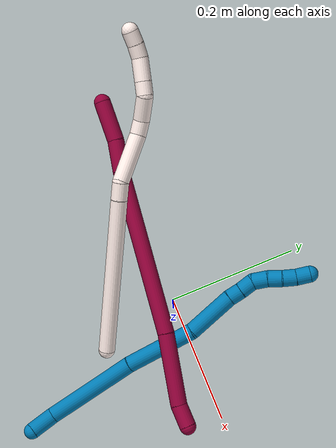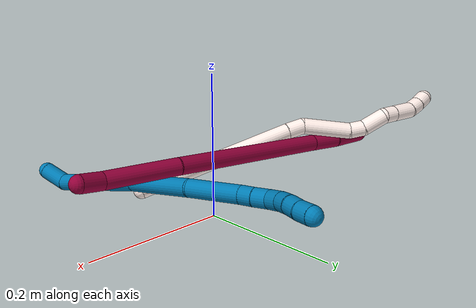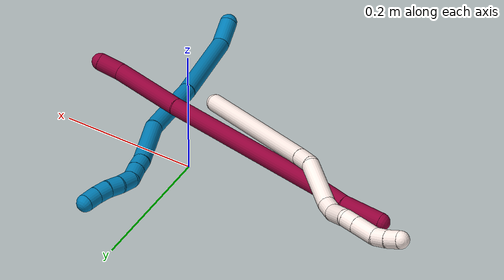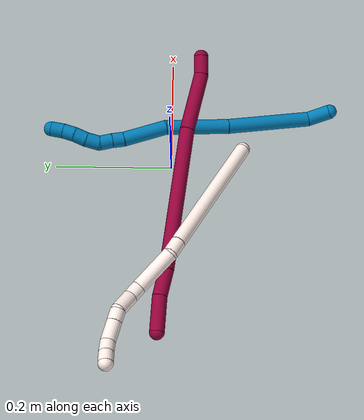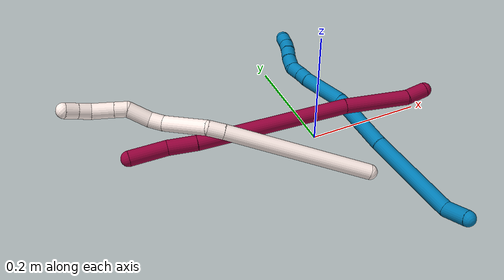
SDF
<sdf version="1.7">
 <world name="default">
  <model name="photoneo_s_sensor">
   <static>1</static>
   <pose>0 0 2 1.57079 1.57079 3.14159</pose>
   <link name="link">
    <inertial><mass>0.1</mass></inertial>
    <sensor name="sensor" type="depth">
     <update_rate>30</update_rate>
     <camera>
      <horizontal_fov>1.22</horizontal_fov>
      <image><width>1920</width><height>1200</height><format>B8G8R8</format></image>
      <clip><near>0.1</near><far>4</far></clip>
      <depth_camera><output>points</output></depth_camera>
     </camera>
     <plugin name="camera_plugin" filename="libgazebo_ros_depth_camera.so">
      <baseline>0.2</baseline>
      <alwaysOn>1</alwaysOn>
      <updateRate>0.0</updateRate>
      <cameraName>camera_ir</cameraName>
      <imageTopicName>/camera/color/image_raw</imageTopicName>
      <cameraInfoTopicName>/camera/color/camera_info</cameraInfoTopicName>
      <depthImageTopicName>/camera/depth/image_raw</depthImageTopicName>
      <depthImageCameraInfoTopicName>/camera/depth/camera_info</depthImageCameraInfoTopicName>
      <pointCloudTopicName>/camera/depth/points</pointCloudTopicName>
      <frameName>fr_optical</frameName>
      <pointCloudCutoff>0.1</pointCloudCutoff>
      <pointCloudCutoffMax>2.0</pointCloudCutoffMax>
      <distortionK1>0</distortionK1>
      <distortionK2>0</distortionK2>
      <distortionK3>0</distortionK3>
      <distortionT1>0</distortionT1>
      <distortionT2>0</distortionT2>
      <CxPrime>0</CxPrime>
      <Cx>0</Cx>
      <Cy>0</Cy>
      <focalLength>0</focalLength>
      <hackBaseline>0</hackBaseline>
     </plugin>
    </sensor>
   </link>
  </model>
  <model name="bin">
   <static>1</static>
   <link name="bottom">
    <collision name="collision-bottom">
     <pose>0 0 -0.01 0 -0 0</pose>
     <geometry><box><size>0.8 0.6 0.02</size></box></geometry>
     <surface>
      <friction><ode><mu>100</mu><mu2>100</mu2></ode></friction>
      <contact><collide_bitmask>65535</collide_bitmask></contact>
     </surface>
    </collision>
   </link>
   <link name="west_wall">
    <collision name="collision-west_wall">
     <pose>-0.41 0 0.1 0 -0 0</pose>
     <geometry><box><size>0.02 0.6 0.2</size></box></geometry>
     <surface>
      <friction><ode><mu>100</mu><mu2>100</mu2></ode></friction>
      <contact><collide_bitmask>65535</collide_bitmask></contact>
     </surface>
    </collision>
   </link>
   <link name="east_wall">
    <collision name="collision-east_wall">
     <pose>0.41 0 0.1 0 -0 0</pose>
     <geometry><box><size>0.02 0.6 0.2</size></box></geometry>
     <surface>
      <friction><ode><mu>100</mu><mu2>100</mu2></ode></friction>
      <contact><collide_bitmask>65535</collide_bitmask></contact>
     </surface>
    </collision>
   </link>
   <link name="south_wall">
    <collision name="collision-south_wall">
     <pose>0 -0.31 0.1 0 -0 0</pose>
     <geometry><box><size>0.8 0.02 0.2</size></box></geometry>
     <surface>
      <friction><ode><mu>100</mu><mu2>100</mu2></ode></friction>
      <contact><collide_bitmask>65535</collide_bitmask></contact>
     </surface>
    </collision>
   </link>
   <link name="north_wall">
    <collision name="collision-north_wall">
     <pose>0 0.31 0.1 0 -0 0</pose>
     <geometry><box><size>0.8 0.02 0.2</size></box></geometry>
     <surface>
      <friction><ode><mu>100</mu><mu2>100</mu2></ode></friction>
      <contact><collide_bitmask>65535</collide_bitmask></contact>
     </surface>
    </collision>
   </link>
  </model>
  <model name="8">
   <static>0</static>
   <link name="8">
    <collision name="collision-cylinder-e_1_1_4">
     <pose>-0.00067 -0.000463 -0.016923 3.11426 -0.039529 -1.93159</pose>
     <geometry><cylinder><radius>0.0125</radius><length>0.033885</length></cylinder></geometry>
     <surface>
      <friction><ode><mu>1.16</mu><mu2>1.16</mu2><slip1>0</slip1><slip2>0</slip2></ode></friction>
      <contact><ode><kp>1e+06</kp><kd>1</kd><max_vel>0</max_vel><min_depth>0.001</min_depth></ode></contact>
     </surface>
    </collision>
    <visual name="visual-cylinder-e_1_1_4">
     <pose>-0.00067 -0.000463 -0.016923 3.11426 -0.039529 -1.93159</pose>
     <geometry><cylinder><radius>0.0125</radius><length>0.033885</length></cylinder></geometry>
     <material><ambient>0.584314 0 0.227451 1</ambient></material>
    </visual>
    <collision name="collision-cylinder-e_2_4_5">
     <pose>-0.017128 0.000103 -0.085583 -3.12171 -0.296142 3.00848</pose>
     <geometry><cylinder><radius>0.0125</radius><length>0.108205</length></cylinder></geometry>
     <surface>
      <friction><ode><mu>1.16</mu><mu2>1.16</mu2><slip1>0</slip1><slip2>0</slip2></ode></friction>
      <contact><ode><kp>1e+06</kp><kd>1</kd><max_vel>0</max_vel><min_depth>0.001</min_depth></ode></contact>
     </surface>
    </collision>
    <visual name="visual-cylinder-e_2_4_5">
     <pose>-0.017128 0.000103 -0.085583 -3.12171 -0.296142 3.00848</pose>
     <geometry><cylinder><radius>0.0125</radius><length>0.108205</length></cylinder></geometry>
     <material><ambient>0.584314 0 0.227451 1</ambient></material>
    </visual>
    <collision name="collision-cylinder-e_3_5_6">
     <pose>-0.05724 0.00033 -0.260016 3.13505 -0.1957 -3.07497</pose>
     <geometry><cylinder><radius>0.0125</radius><length>0.250173</length></cylinder></geometry>
     <surface>
      <friction><ode><mu>1.16</mu><mu2>1.16</mu2><slip1>0</slip1><slip2>0</slip2></ode></friction>
      <contact><ode><kp>1e+06</kp><kd>1</kd><max_vel>0</max_vel><min_depth>0.001</min_depth></ode></contact>
     </surface>
    </collision>
    <visual name="visual-cylinder-e_3_5_6">
     <pose>-0.05724 0.00033 -0.260016 3.13505 -0.1957 -3.07497</pose>
     <geometry><cylinder><radius>0.0125</radius><length>0.250173</length></cylinder></geometry>
     <material><ambient>0.584314 0 0.227451 1</ambient></material>
    </visual>
    <collision name="collision-cylinder-e_4_6_7">
     <pose>-0.088101 0.000463 -0.405275 -3.10012 -0.281786 2.85118</pose>
     <geometry><cylinder><radius>0.0125</radius><length>0.047018</length></cylinder></geometry>
     <surface>
      <friction><ode><mu>1.16</mu><mu2>1.16</mu2><slip1>0</slip1><slip2>0</slip2></ode></friction>
      <contact><ode><kp>1e+06</kp><kd>1</kd><max_vel>0</max_vel><min_depth>0.001</min_depth></ode></contact>
     </surface>
    </collision>
    <visual name="visual-cylinder-e_4_6_7">
     <pose>-0.088101 0.000463 -0.405275 -3.10012 -0.281786 2.85118</pose>
     <geometry><cylinder><radius>0.0125</radius><length>0.047018</length></cylinder></geometry>
     <material><ambient>0.584314 0 0.227451 1</ambient></material>
    </visual>
    <collision name="collision-cylinder-e_5_7_2">
     <pose>-0.099421 -0.00063 -0.457749 3.07383 -0.158212 -2.33354</pose>
     <geometry><cylinder><radius>0.0125</radius><length>0.060719</length></cylinder></geometry>
     <surface>
      <friction><ode><mu>1.16</mu><mu2>1.16</mu2><slip1>0</slip1><slip2>0</slip2></ode></friction>
      <contact><ode><kp>1e+06</kp><kd>1</kd><max_vel>0</max_vel><min_depth>0.001</min_depth></ode></contact>
     </surface>
    </collision>
    <visual name="visual-cylinder-e_5_7_2">
     <pose>-0.099421 -0.00063 -0.457749 3.07383 -0.158212 -2.33354</pose>
     <geometry><cylinder><radius>0.0125</radius><length>0.060719</length></cylinder></geometry>
     <material><ambient>0.584314 0 0.227451 1</ambient></material>
    </visual>
    <collision name="collision-sphere-2">
     <pose>-0.104205 -0.00266 -0.48766 0 -0 0</pose>
     <geometry><sphere><radius>0.0125</radius></sphere></geometry>
     <surface>
      <friction><ode><mu>1.16</mu><mu2>1.16</mu2><slip1>0</slip1><slip2>0</slip2></ode></friction>
      <contact><ode><kp>1e+06</kp><kd>1</kd><max_vel>0</max_vel><min_depth>0.001</min_depth></ode></contact>
     </surface>
    </collision>
    <visual name="visual-sphere-2">
     <pose>-0.104205 -0.00266 -0.48766 0 -0 0</pose>
     <geometry><sphere><radius>0.0125</radius></sphere></geometry>
     <material><ambient>0.584314 0 0.227451 1</ambient></material>
    </visual>
    <collision name="collision-sphere-7">
     <pose>-0.094638 0.001399 -0.427837 0 -0 0</pose>
     <geometry><sphere><radius>0.0125</radius></sphere></geometry>
     <surface>
      <friction><ode><mu>1.16</mu><mu2>1.16</mu2><slip1>0</slip1><slip2>0</slip2></ode></friction>
      <contact><ode><kp>1e+06</kp><kd>1</kd><max_vel>0</max_vel><min_depth>0.001</min_depth></ode></contact>
     </surface>
    </collision>
    <visual name="visual-sphere-7">
     <pose>-0.094638 0.001399 -0.427837 0 -0 0</pose>
     <geometry><sphere><radius>0.0125</radius></sphere></geometry>
     <material><ambient>0.584314 0 0.227451 1</ambient></material>
    </visual>
    <collision name="collision-sphere-6">
     <pose>-0.081564 -0.000473 -0.382713 0 -0 0</pose>
     <geometry><sphere><radius>0.0125</radius></sphere></geometry>
     <surface>
      <friction><ode><mu>1.16</mu><mu2>1.16</mu2><slip1>0</slip1><slip2>0</slip2></ode></friction>
      <contact><ode><kp>1e+06</kp><kd>1</kd><max_vel>0</max_vel><min_depth>0.001</min_depth></ode></contact>
     </surface>
    </collision>
    <visual name="visual-sphere-6">
     <pose>-0.081564 -0.000473 -0.382713 0 -0 0</pose>
     <geometry><sphere><radius>0.0125</radius></sphere></geometry>
     <material><ambient>0.584314 0 0.227451 1</ambient></material>
    </visual>
    <collision name="collision-sphere-5">
     <pose>-0.032917 0.001132 -0.13732 0 -0 0</pose>
     <geometry><sphere><radius>0.0125</radius></sphere></geometry>
     <surface>
      <friction><ode><mu>1.16</mu><mu2>1.16</mu2><slip1>0</slip1><slip2>0</slip2></ode></friction>
      <contact><ode><kp>1e+06</kp><kd>1</kd><max_vel>0</max_vel><min_depth>0.001</min_depth></ode></contact>
     </surface>
    </collision>
    <visual name="visual-sphere-5">
     <pose>-0.032917 0.001132 -0.13732 0 -0 0</pose>
     <geometry><sphere><radius>0.0125</radius></sphere></geometry>
     <material><ambient>0.584314 0 0.227451 1</ambient></material>
    </visual>
    <collision name="collision-sphere-1">
     <geometry><sphere><radius>0.0125</radius></sphere></geometry>
     <surface>
      <friction><ode><mu>1.16</mu><mu2>1.16</mu2><slip1>0</slip1><slip2>0</slip2></ode></friction>
      <contact><ode><kp>1e+06</kp><kd>1</kd><max_vel>0</max_vel><min_depth>0.001</min_depth></ode></contact>
     </surface>
    </collision>
    <visual name="visual-sphere-1">
     <geometry><sphere><radius>0.0125</radius></sphere></geometry>
     <material><ambient>0.584314 0 0.227451 1</ambient></material>
    </visual>
    <collision name="collision-sphere-4">
     <pose>-0.001339 -0.000925 -0.033845 0 -0 0</pose>
     <geometry><sphere><radius>0.0125</radius></sphere></geometry>
     <surface>
      <friction><ode><mu>1.16</mu><mu2>1.16</mu2><slip1>0</slip1><slip2>0</slip2></ode></friction>
      <contact><ode><kp>1e+06</kp><kd>1</kd><max_vel>0</max_vel><min_depth>0.001</min_depth></ode></contact>
     </surface>
    </collision>
    <visual name="visual-sphere-4">
     <pose>-0.001339 -0.000925 -0.033845 0 -0 0</pose>
     <geometry><sphere><radius>0.0125</radius></sphere></geometry>
     <material><ambient>0.584314 0 0.227451 1</ambient></material>
    </visual>
    <inertial>
     <pose>-0.05275 0.000123 -0.243465 0 -0 0</pose>
     <mass>0.5</mass>
     <inertia>
      <ixx>-0.001513</ixx>
      <ixy>0</ixy>
      <ixz>0</ixz>
      <iyy>0.001358</iyy>
      <iyz>0</iyz>
      <izz>0.000263</izz>
     </inertia>
    </inertial>
   </link>
   <pose>0.177 -0.049414 0.080172 -1.33825 0.681969 -1.39751</pose>
  </model>
  <model name="9">
   <static>0</static>
   <link name="9">
    <collision name="collision-cylinder-e_1_1_4">
     <pose>-0.005382 0.000952 -0.019066 -3.09169 -0.274787 2.78446</pose>
     <geometry><cylinder><radius>0.0125</radius><length>0.039667</length></cylinder></geometry>
     <surface>
      <friction><ode><mu>1.16</mu><mu2>1.16</mu2><slip1>0</slip1><slip2>0</slip2></ode></friction>
      <contact><ode><kp>1e+06</kp><kd>1</kd><max_vel>0</max_vel><min_depth>0.001</min_depth></ode></contact>
     </surface>
    </collision>
    <visual name="visual-cylinder-e_1_1_4">
     <pose>-0.005382 0.000952 -0.019066 -3.09169 -0.274787 2.78446</pose>
     <geometry><cylinder><radius>0.0125</radius><length>0.039667</length></cylinder></geometry>
     <material><ambient>0 0.490196 0.709804 1</ambient></material>
    </visual>
    <collision name="collision-cylinder-e_2_4_5">
     <pose>-0.006853 0.032554 -0.105168 -2.71276 0.052994 -0.24222</pose>
     <geometry><cylinder><radius>0.0125</radius><length>0.14763</length></cylinder></geometry>
     <surface>
      <friction><ode><mu>1.16</mu><mu2>1.16</mu2><slip1>0</slip1><slip2>0</slip2></ode></friction>
      <contact><ode><kp>1e+06</kp><kd>1</kd><max_vel>0</max_vel><min_depth>0.001</min_depth></ode></contact>
     </surface>
    </collision>
    <visual name="visual-cylinder-e_2_4_5">
     <pose>-0.006853 0.032554 -0.105168 -2.71276 0.052994 -0.24222</pose>
     <geometry><cylinder><radius>0.0125</radius><length>0.14763</length></cylinder></geometry>
     <material><ambient>0 0.490196 0.709804 1</ambient></material>
    </visual>
    <collision name="collision-cylinder-e_3_5_6">
     <pose>0.002993 0.081262 -0.223149 -2.80096 0.109391 -0.616398</pose>
     <geometry><cylinder><radius>0.0125</radius><length>0.108749</length></cylinder></geometry>
     <surface>
      <friction><ode><mu>1.16</mu><mu2>1.16</mu2><slip1>0</slip1><slip2>0</slip2></ode></friction>
      <contact><ode><kp>1e+06</kp><kd>1</kd><max_vel>0</max_vel><min_depth>0.001</min_depth></ode></contact>
     </surface>
    </collision>
    <visual name="visual-cylinder-e_3_5_6">
     <pose>0.002993 0.081262 -0.223149 -2.80096 0.109391 -0.616398</pose>
     <geometry><cylinder><radius>0.0125</radius><length>0.108749</length></cylinder></geometry>
     <material><ambient>0 0.490196 0.709804 1</ambient></material>
    </visual>
    <collision name="collision-cylinder-e_4_6_7">
     <pose>0.003615 0.113782 -0.308667 -2.74539 -0.140867 0.675959</pose>
     <geometry><cylinder><radius>0.0125</radius><length>0.075704</length></cylinder></geometry>
     <surface>
      <friction><ode><mu>1.16</mu><mu2>1.16</mu2><slip1>0</slip1><slip2>0</slip2></ode></friction>
      <contact><ode><kp>1e+06</kp><kd>1</kd><max_vel>0</max_vel><min_depth>0.001</min_depth></ode></contact>
     </surface>
    </collision>
    <visual name="visual-cylinder-e_4_6_7">
     <pose>0.003615 0.113782 -0.308667 -2.74539 -0.140867 0.675959</pose>
     <geometry><cylinder><radius>0.0125</radius><length>0.075704</length></cylinder></geometry>
     <material><ambient>0 0.490196 0.709804 1</ambient></material>
    </visual>
    <collision name="collision-cylinder-e_5_7_8">
     <pose>-0.001703 0.131272 -0.352774 -2.83418 -0.000289 0.001865</pose>
     <geometry><cylinder><radius>0.0125</radius><length>0.020004</length></cylinder></geometry>
     <surface>
      <friction><ode><mu>1.16</mu><mu2>1.16</mu2><slip1>0</slip1><slip2>0</slip2></ode></friction>
      <contact><ode><kp>1e+06</kp><kd>1</kd><max_vel>0</max_vel><min_depth>0.001</min_depth></ode></contact>
     </surface>
    </collision>
    <visual name="visual-cylinder-e_5_7_8">
     <pose>-0.001703 0.131272 -0.352774 -2.83418 -0.000289 0.001865</pose>
     <geometry><cylinder><radius>0.0125</radius><length>0.020004</length></cylinder></geometry>
     <material><ambient>0 0.490196 0.709804 1</ambient></material>
    </visual>
    <collision name="collision-cylinder-e_6_8_9">
     <pose>-0.002515 0.13822 -0.372655 -2.77933 -0.072983 0.393525</pose>
     <geometry><cylinder><radius>0.0125</radius><length>0.02219</length></cylinder></geometry>
     <surface>
      <friction><ode><mu>1.16</mu><mu2>1.16</mu2><slip1>0</slip1><slip2>0</slip2></ode></friction>
      <contact><ode><kp>1e+06</kp><kd>1</kd><max_vel>0</max_vel><min_depth>0.001</min_depth></ode></contact>
     </surface>
    </collision>
    <visual name="visual-cylinder-e_6_8_9">
     <pose>-0.002515 0.13822 -0.372655 -2.77933 -0.072983 0.393525</pose>
     <geometry><cylinder><radius>0.0125</radius><length>0.02219</length></cylinder></geometry>
     <material><ambient>0 0.490196 0.709804 1</ambient></material>
    </visual>
    <collision name="collision-cylinder-e_7_9_10">
     <pose>0.000966 0.14422 -0.393725 -2.9501 0.374264 -2.20278</pose>
     <geometry><cylinder><radius>0.0125</radius><length>0.023469</length></cylinder></geometry>
     <surface>
      <friction><ode><mu>1.16</mu><mu2>1.16</mu2><slip1>0</slip1><slip2>0</slip2></ode></friction>
      <contact><ode><kp>1e+06</kp><kd>1</kd><max_vel>0</max_vel><min_depth>0.001</min_depth></ode></contact>
     </surface>
    </collision>
    <visual name="visual-cylinder-e_7_9_10">
     <pose>0.000966 0.14422 -0.393725 -2.9501 0.374264 -2.20278</pose>
     <geometry><cylinder><radius>0.0125</radius><length>0.023469</length></cylinder></geometry>
     <material><ambient>0 0.490196 0.709804 1</ambient></material>
    </visual>
    <collision name="collision-cylinder-e_8_10_11">
     <pose>0.010112 0.146587 -0.41369 -3.11038 0.483474 -3.01517</pose>
     <geometry><cylinder><radius>0.0125</radius><length>0.02089</length></cylinder></geometry>
     <surface>
      <friction><ode><mu>1.16</mu><mu2>1.16</mu2><slip1>0</slip1><slip2>0</slip2></ode></friction>
      <contact><ode><kp>1e+06</kp><kd>1</kd><max_vel>0</max_vel><min_depth>0.001</min_depth></ode></contact>
     </surface>
    </collision>
    <visual name="visual-cylinder-e_8_10_11">
     <pose>0.010112 0.146587 -0.41369 -3.11038 0.483474 -3.01517</pose>
     <geometry><cylinder><radius>0.0125</radius><length>0.02089</length></cylinder></geometry>
     <material><ambient>0 0.490196 0.709804 1</ambient></material>
    </visual>
    <collision name="collision-cylinder-e_9_11_12">
     <pose>0.018406 0.146587 -0.432573 3.11165 0.342542 2.96891</pose>
     <geometry><cylinder><radius>0.0125</radius><length>0.020477</length></cylinder></geometry>
     <surface>
      <friction><ode><mu>1.16</mu><mu2>1.16</mu2><slip1>0</slip1><slip2>0</slip2></ode></friction>
      <contact><ode><kp>1e+06</kp><kd>1</kd><max_vel>0</max_vel><min_depth>0.001</min_depth></ode></contact>
     </surface>
    </collision>
    <visual name="visual-cylinder-e_9_11_12">
     <pose>0.018406 0.146587 -0.432573 3.11165 0.342542 2.96891</pose>
     <geometry><cylinder><radius>0.0125</radius><length>0.020477</length></cylinder></geometry>
     <material><ambient>0 0.490196 0.709804 1</ambient></material>
    </visual>
    <collision name="collision-cylinder-e_10_12_2">
     <pose>0.024462 0.147084 -0.452464 -3.06516 0.249304 -2.54924</pose>
     <geometry><cylinder><radius>0.0125</radius><length>0.02122</length></cylinder></geometry>
     <surface>
      <friction><ode><mu>1.16</mu><mu2>1.16</mu2><slip1>0</slip1><slip2>0</slip2></ode></friction>
      <contact><ode><kp>1e+06</kp><kd>1</kd><max_vel>0</max_vel><min_depth>0.001</min_depth></ode></contact>
     </surface>
    </collision>
    <visual name="visual-cylinder-e_10_12_2">
     <pose>0.024462 0.147084 -0.452464 -3.06516 0.249304 -2.54924</pose>
     <geometry><cylinder><radius>0.0125</radius><length>0.02122</length></cylinder></geometry>
     <material><ambient>0 0.490196 0.709804 1</ambient></material>
    </visual>
    <collision name="collision-sphere-2">
     <pose>0.02708 0.147869 -0.462716 0 -0 0</pose>
     <geometry><sphere><radius>0.0125</radius></sphere></geometry>
     <surface>
      <friction><ode><mu>1.16</mu><mu2>1.16</mu2><slip1>0</slip1><slip2>0</slip2></ode></friction>
      <contact><ode><kp>1e+06</kp><kd>1</kd><max_vel>0</max_vel><min_depth>0.001</min_depth></ode></contact>
     </surface>
    </collision>
    <visual name="visual-sphere-2">
     <pose>0.02708 0.147869 -0.462716 0 -0 0</pose>
     <geometry><sphere><radius>0.0125</radius></sphere></geometry>
     <material><ambient>0 0.490196 0.709804 1</ambient></material>
    </visual>
    <collision name="collision-sphere-12">
     <pose>0.021845 0.146299 -0.442212 0 -0 0</pose>
     <geometry><sphere><radius>0.0125</radius></sphere></geometry>
     <surface>
      <friction><ode><mu>1.16</mu><mu2>1.16</mu2><slip1>0</slip1><slip2>0</slip2></ode></friction>
      <contact><ode><kp>1e+06</kp><kd>1</kd><max_vel>0</max_vel><min_depth>0.001</min_depth></ode></contact>
     </surface>
    </collision>
    <visual name="visual-sphere-12">
     <pose>0.021845 0.146299 -0.442212 0 -0 0</pose>
     <geometry><sphere><radius>0.0125</radius></sphere></geometry>
     <material><ambient>0 0.490196 0.709804 1</ambient></material>
    </visual>
    <collision name="collision-sphere-11">
     <pose>0.014967 0.146876 -0.422934 0 -0 0</pose>
     <geometry><sphere><radius>0.0125</radius></sphere></geometry>
     <surface>
      <friction><ode><mu>1.16</mu><mu2>1.16</mu2><slip1>0</slip1><slip2>0</slip2></ode></friction>
      <contact><ode><kp>1e+06</kp><kd>1</kd><max_vel>0</max_vel><min_depth>0.001</min_depth></ode></contact>
     </surface>
    </collision>
    <visual name="visual-sphere-11">
     <pose>0.014967 0.146876 -0.422934 0 -0 0</pose>
     <geometry><sphere><radius>0.0125</radius></sphere></geometry>
     <material><ambient>0 0.490196 0.709804 1</ambient></material>
    </visual>
    <collision name="collision-sphere-10">
     <pose>0.005256 0.146299 -0.404447 0 -0 0</pose>
     <geometry><sphere><radius>0.0125</radius></sphere></geometry>
     <surface>
      <friction><ode><mu>1.16</mu><mu2>1.16</mu2><slip1>0</slip1><slip2>0</slip2></ode></friction>
      <contact><ode><kp>1e+06</kp><kd>1</kd><max_vel>0</max_vel><min_depth>0.001</min_depth></ode></contact>
     </surface>
    </collision>
    <visual name="visual-sphere-10">
     <pose>0.005256 0.146299 -0.404447 0 -0 0</pose>
     <geometry><sphere><radius>0.0125</radius></sphere></geometry>
     <material><ambient>0 0.490196 0.709804 1</ambient></material>
    </visual>
    <collision name="collision-sphere-9">
     <pose>-0.003324 0.142141 -0.383002 0 -0 0</pose>
     <geometry><sphere><radius>0.0125</radius></sphere></geometry>
     <surface>
      <friction><ode><mu>1.16</mu><mu2>1.16</mu2><slip1>0</slip1><slip2>0</slip2></ode></friction>
      <contact><ode><kp>1e+06</kp><kd>1</kd><max_vel>0</max_vel><min_depth>0.001</min_depth></ode></contact>
     </surface>
    </collision>
    <visual name="visual-sphere-9">
     <pose>-0.003324 0.142141 -0.383002 0 -0 0</pose>
     <geometry><sphere><radius>0.0125</radius></sphere></geometry>
     <material><ambient>0 0.490196 0.709804 1</ambient></material>
    </visual>
    <collision name="collision-sphere-4">
     <pose>-0.010763 0.001904 -0.038131 0 -0 0</pose>
     <geometry><sphere><radius>0.0125</radius></sphere></geometry>
     <surface>
      <friction><ode><mu>1.16</mu><mu2>1.16</mu2><slip1>0</slip1><slip2>0</slip2></ode></friction>
      <contact><ode><kp>1e+06</kp><kd>1</kd><max_vel>0</max_vel><min_depth>0.001</min_depth></ode></contact>
     </surface>
    </collision>
    <visual name="visual-sphere-4">
     <pose>-0.010763 0.001904 -0.038131 0 -0 0</pose>
     <geometry><sphere><radius>0.0125</radius></sphere></geometry>
     <material><ambient>0 0.490196 0.709804 1</ambient></material>
    </visual>
    <collision name="collision-sphere-1">
     <geometry><sphere><radius>0.0125</radius></sphere></geometry>
     <surface>
      <friction><ode><mu>1.16</mu><mu2>1.16</mu2><slip1>0</slip1><slip2>0</slip2></ode></friction>
      <contact><ode><kp>1e+06</kp><kd>1</kd><max_vel>0</max_vel><min_depth>0.001</min_depth></ode></contact>
     </surface>
    </collision>
    <visual name="visual-sphere-1">
     <geometry><sphere><radius>0.0125</radius></sphere></geometry>
     <material><ambient>0 0.490196 0.709804 1</ambient></material>
    </visual>
    <collision name="collision-sphere-8">
     <pose>-0.001706 0.134298 -0.362307 0 -0 0</pose>
     <geometry><sphere><radius>0.0125</radius></sphere></geometry>
     <surface>
      <friction><ode><mu>1.16</mu><mu2>1.16</mu2><slip1>0</slip1><slip2>0</slip2></ode></friction>
      <contact><ode><kp>1e+06</kp><kd>1</kd><max_vel>0</max_vel><min_depth>0.001</min_depth></ode></contact>
     </surface>
    </collision>
    <visual name="visual-sphere-8">
     <pose>-0.001706 0.134298 -0.362307 0 -0 0</pose>
     <geometry><sphere><radius>0.0125</radius></sphere></geometry>
     <material><ambient>0 0.490196 0.709804 1</ambient></material>
    </visual>
    <collision name="collision-sphere-5">
     <pose>-0.002943 0.063205 -0.172205 0 -0 0</pose>
     <geometry><sphere><radius>0.0125</radius></sphere></geometry>
     <surface>
      <friction><ode><mu>1.16</mu><mu2>1.16</mu2><slip1>0</slip1><slip2>0</slip2></ode></friction>
      <contact><ode><kp>1e+06</kp><kd>1</kd><max_vel>0</max_vel><min_depth>0.001</min_depth></ode></contact>
     </surface>
    </collision>
    <visual name="visual-sphere-5">
     <pose>-0.002943 0.063205 -0.172205 0 -0 0</pose>
     <geometry><sphere><radius>0.0125</radius></sphere></geometry>
     <material><ambient>0 0.490196 0.709804 1</ambient></material>
    </visual>
    <collision name="collision-sphere-6">
     <pose>0.008929 0.099319 -0.274093 0 -0 0</pose>
     <geometry><sphere><radius>0.0125</radius></sphere></geometry>
     <surface>
      <friction><ode><mu>1.16</mu><mu2>1.16</mu2><slip1>0</slip1><slip2>0</slip2></ode></friction>
      <contact><ode><kp>1e+06</kp><kd>1</kd><max_vel>0</max_vel><min_depth>0.001</min_depth></ode></contact>
     </surface>
    </collision>
    <visual name="visual-sphere-6">
     <pose>0.008929 0.099319 -0.274093 0 -0 0</pose>
     <geometry><sphere><radius>0.0125</radius></sphere></geometry>
     <material><ambient>0 0.490196 0.709804 1</ambient></material>
    </visual>
    <collision name="collision-sphere-7">
     <pose>-0.0017 0.128245 -0.343241 0 -0 0</pose>
     <geometry><sphere><radius>0.0125</radius></sphere></geometry>
     <surface>
      <friction><ode><mu>1.16</mu><mu2>1.16</mu2><slip1>0</slip1><slip2>0</slip2></ode></friction>
      <contact><ode><kp>1e+06</kp><kd>1</kd><max_vel>0</max_vel><min_depth>0.001</min_depth></ode></contact>
     </surface>
    </collision>
    <visual name="visual-sphere-7">
     <pose>-0.0017 0.128245 -0.343241 0 -0 0</pose>
     <geometry><sphere><radius>0.0125</radius></sphere></geometry>
     <material><ambient>0 0.490196 0.709804 1</ambient></material>
    </visual>
    <inertial>
     <pose>0.000828 0.081115 -0.231168 0 -0 0</pose>
     <mass>0.5</mass>
     <inertia>
      <ixx>0.000275</ixx>
      <ixy>0</ixy>
      <ixz>0</ixz>
      <iyy>-0.000435</iyy>
      <iyz>0</iyz>
      <izz>-0.000225</izz>
     </inertia>
    </inertial>
   </link>
   <pose>0.102214 -0.275505 0.024442 1.34598 -0.681997 0.12271</pose>
  </model>
  <model name="11">
   <static>0</static>
   <link name="11">
    <collision name="collision-cylinder-e_1_1_4">
     <pose>-0.001335 0.060677 -0.10447 -2.6154 -0.011047 0.041008</pose>
     <geometry><cylinder><radius>0.0125</radius><length>0.24164</length></cylinder></geometry>
     <surface>
      <friction><ode><mu>1.16</mu><mu2>1.16</mu2><slip1>0</slip1><slip2>0</slip2></ode></friction>
      <contact><ode><kp>1e+06</kp><kd>1</kd><max_vel>0</max_vel><min_depth>0.001</min_depth></ode></contact>
     </surface>
    </collision>
    <visual name="visual-cylinder-e_1_1_4">
     <pose>-0.001335 0.060677 -0.10447 -2.6154 -0.011047 0.041008</pose>
     <geometry><cylinder><radius>0.0125</radius><length>0.24164</length></cylinder></geometry>
     <material><ambient>1 0.933333 0.909804 1</ambient></material>
    </visual>
    <collision name="collision-cylinder-e_2_4_5">
     <pose>-0.003393 0.128311 -0.220212 -2.58867 -0.054563 0.191767</pose>
     <geometry><cylinder><radius>0.0125</radius><length>0.026532</length></cylinder></geometry>
     <surface>
      <friction><ode><mu>1.16</mu><mu2>1.16</mu2><slip1>0</slip1><slip2>0</slip2></ode></friction>
      <contact><ode><kp>1e+06</kp><kd>1</kd><max_vel>0</max_vel><min_depth>0.001</min_depth></ode></contact>
     </surface>
    </collision>
    <visual name="visual-cylinder-e_2_4_5">
     <pose>-0.003393 0.128311 -0.220212 -2.58867 -0.054563 0.191767</pose>
     <geometry><cylinder><radius>0.0125</radius><length>0.026532</length></cylinder></geometry>
     <material><ambient>1 0.933333 0.909804 1</ambient></material>
    </visual>
    <collision name="collision-cylinder-e_3_5_6">
     <pose>-0.021976 0.152981 -0.258871 -2.56748 -0.500994 1.42826</pose>
     <geometry><cylinder><radius>0.0125</radius><length>0.074371</length></cylinder></geometry>
     <surface>
      <friction><ode><mu>1.16</mu><mu2>1.16</mu2><slip1>0</slip1><slip2>0</slip2></ode></friction>
      <contact><ode><kp>1e+06</kp><kd>1</kd><max_vel>0</max_vel><min_depth>0.001</min_depth></ode></contact>
     </surface>
    </collision>
    <visual name="visual-cylinder-e_3_5_6">
     <pose>-0.021976 0.152981 -0.258871 -2.56748 -0.500994 1.42826</pose>
     <geometry><cylinder><radius>0.0125</radius><length>0.074371</length></cylinder></geometry>
     <material><ambient>1 0.933333 0.909804 1</ambient></material>
    </visual>
    <collision name="collision-cylinder-e_4_6_7">
     <pose>-0.042221 0.175949 -0.296193 -2.65511 -0.209084 0.80005</pose>
     <geometry><cylinder><radius>0.0125</radius><length>0.022979</length></cylinder></geometry>
     <surface>
      <friction><ode><mu>1.16</mu><mu2>1.16</mu2><slip1>0</slip1><slip2>0</slip2></ode></friction>
      <contact><ode><kp>1e+06</kp><kd>1</kd><max_vel>0</max_vel><min_depth>0.001</min_depth></ode></contact>
     </surface>
    </collision>
    <visual name="visual-cylinder-e_4_6_7">
     <pose>-0.042221 0.175949 -0.296193 -2.65511 -0.209084 0.80005</pose>
     <geometry><cylinder><radius>0.0125</radius><length>0.022979</length></cylinder></geometry>
     <material><ambient>1 0.933333 0.909804 1</ambient></material>
    </visual>
    <collision name="collision-cylinder-e_5_7_8">
     <pose>-0.042665 0.188126 -0.323736 -2.76699 0.10221 -0.527215</pose>
     <geometry><cylinder><radius>0.0125</radius><length>0.038037</length></cylinder></geometry>
     <surface>
      <friction><ode><mu>1.16</mu><mu2>1.16</mu2><slip1>0</slip1><slip2>0</slip2></ode></friction>
      <contact><ode><kp>1e+06</kp><kd>1</kd><max_vel>0</max_vel><min_depth>0.001</min_depth></ode></contact>
     </surface>
    </collision>
    <visual name="visual-cylinder-e_5_7_8">
     <pose>-0.042665 0.188126 -0.323736 -2.76699 0.10221 -0.527215</pose>
     <geometry><cylinder><radius>0.0125</radius><length>0.038037</length></cylinder></geometry>
     <material><ambient>1 0.933333 0.909804 1</ambient></material>
    </visual>
    <collision name="collision-cylinder-e_6_8_9">
     <pose>-0.041441 0.202653 -0.348 -2.2899 -0.070764 0.155752</pose>
     <geometry><cylinder><radius>0.0125</radius><length>0.020263</length></cylinder></geometry>
     <surface>
      <friction><ode><mu>1.16</mu><mu2>1.16</mu2><slip1>0</slip1><slip2>0</slip2></ode></friction>
      <contact><ode><kp>1e+06</kp><kd>1</kd><max_vel>0</max_vel><min_depth>0.001</min_depth></ode></contact>
     </surface>
    </collision>
    <visual name="visual-cylinder-e_6_8_9">
     <pose>-0.041441 0.202653 -0.348 -2.2899 -0.070764 0.155752</pose>
     <geometry><cylinder><radius>0.0125</radius><length>0.020263</length></cylinder></geometry>
     <material><ambient>1 0.933333 0.909804 1</ambient></material>
    </visual>
    <collision name="collision-cylinder-e_7_9_10">
     <pose>-0.043442 0.223464 -0.366013 -2.28098 -0.073606 0.160094</pose>
     <geometry><cylinder><radius>0.0125</radius><length>0.034931</length></cylinder></geometry>
     <surface>
      <friction><ode><mu>1.16</mu><mu2>1.16</mu2><slip1>0</slip1><slip2>0</slip2></ode></friction>
      <contact><ode><kp>1e+06</kp><kd>1</kd><max_vel>0</max_vel><min_depth>0.001</min_depth></ode></contact>
     </surface>
    </collision>
    <visual name="visual-cylinder-e_7_9_10">
     <pose>-0.043442 0.223464 -0.366013 -2.28098 -0.073606 0.160094</pose>
     <geometry><cylinder><radius>0.0125</radius><length>0.034931</length></cylinder></geometry>
     <material><ambient>1 0.933333 0.909804 1</ambient></material>
    </visual>
    <collision name="collision-cylinder-e_8_10_11">
     <pose>-0.042354 0.244087 -0.384042 -2.30345 0.233429 -0.514738</pose>
     <geometry><cylinder><radius>0.0125</radius><length>0.020509</length></cylinder></geometry>
     <surface>
      <friction><ode><mu>1.16</mu><mu2>1.16</mu2><slip1>0</slip1><slip2>0</slip2></ode></friction>
      <contact><ode><kp>1e+06</kp><kd>1</kd><max_vel>0</max_vel><min_depth>0.001</min_depth></ode></contact>
     </surface>
    </collision>
    <visual name="visual-cylinder-e_8_10_11">
     <pose>-0.042354 0.244087 -0.384042 -2.30345 0.233429 -0.514738</pose>
     <geometry><cylinder><radius>0.0125</radius><length>0.020509</length></cylinder></geometry>
     <material><ambient>1 0.933333 0.909804 1</ambient></material>
    </visual>
    <collision name="collision-cylinder-e_9_11_2">
     <pose>-0.036451 0.258861 -0.397111 -2.28641 0.34751 -0.735309</pose>
     <geometry><cylinder><radius>0.0125</radius><length>0.020738</length></cylinder></geometry>
     <surface>
      <friction><ode><mu>1.16</mu><mu2>1.16</mu2><slip1>0</slip1><slip2>0</slip2></ode></friction>
      <contact><ode><kp>1e+06</kp><kd>1</kd><max_vel>0</max_vel><min_depth>0.001</min_depth></ode></contact>
     </surface>
    </collision>
    <visual name="visual-cylinder-e_9_11_2">
     <pose>-0.036451 0.258861 -0.397111 -2.28641 0.34751 -0.735309</pose>
     <geometry><cylinder><radius>0.0125</radius><length>0.020738</length></cylinder></geometry>
     <material><ambient>1 0.933333 0.909804 1</ambient></material>
    </visual>
    <collision name="collision-sphere-2">
     <pose>-0.03292 0.266219 -0.403507 0 -0 0</pose>
     <geometry><sphere><radius>0.0125</radius></sphere></geometry>
     <surface>
      <friction><ode><mu>1.16</mu><mu2>1.16</mu2><slip1>0</slip1><slip2>0</slip2></ode></friction>
      <contact><ode><kp>1e+06</kp><kd>1</kd><max_vel>0</max_vel><min_depth>0.001</min_depth></ode></contact>
     </surface>
    </collision>
    <visual name="visual-sphere-2">
     <pose>-0.03292 0.266219 -0.403507 0 -0 0</pose>
     <geometry><sphere><radius>0.0125</radius></sphere></geometry>
     <material><ambient>1 0.933333 0.909804 1</ambient></material>
    </visual>
    <collision name="collision-sphere-11">
     <pose>-0.039982 0.251504 -0.390715 0 -0 0</pose>
     <geometry><sphere><radius>0.0125</radius></sphere></geometry>
     <surface>
      <friction><ode><mu>1.16</mu><mu2>1.16</mu2><slip1>0</slip1><slip2>0</slip2></ode></friction>
      <contact><ode><kp>1e+06</kp><kd>1</kd><max_vel>0</max_vel><min_depth>0.001</min_depth></ode></contact>
     </surface>
    </collision>
    <visual name="visual-sphere-11">
     <pose>-0.039982 0.251504 -0.390715 0 -0 0</pose>
     <geometry><sphere><radius>0.0125</radius></sphere></geometry>
     <material><ambient>1 0.933333 0.909804 1</ambient></material>
    </visual>
    <collision name="collision-sphere-10">
     <pose>-0.044726 0.236671 -0.37737 0 -0 0</pose>
     <geometry><sphere><radius>0.0125</radius></sphere></geometry>
     <surface>
      <friction><ode><mu>1.16</mu><mu2>1.16</mu2><slip1>0</slip1><slip2>0</slip2></ode></friction>
      <contact><ode><kp>1e+06</kp><kd>1</kd><max_vel>0</max_vel><min_depth>0.001</min_depth></ode></contact>
     </surface>
    </collision>
    <visual name="visual-sphere-10">
     <pose>-0.044726 0.236671 -0.37737 0 -0 0</pose>
     <geometry><sphere><radius>0.0125</radius></sphere></geometry>
     <material><ambient>1 0.933333 0.909804 1</ambient></material>
    </visual>
    <collision name="collision-sphere-9">
     <pose>-0.042158 0.210257 -0.354657 0 -0 0</pose>
     <geometry><sphere><radius>0.0125</radius></sphere></geometry>
     <surface>
      <friction><ode><mu>1.16</mu><mu2>1.16</mu2><slip1>0</slip1><slip2>0</slip2></ode></friction>
      <contact><ode><kp>1e+06</kp><kd>1</kd><max_vel>0</max_vel><min_depth>0.001</min_depth></ode></contact>
     </surface>
    </collision>
    <visual name="visual-sphere-9">
     <pose>-0.042158 0.210257 -0.354657 0 -0 0</pose>
     <geometry><sphere><radius>0.0125</radius></sphere></geometry>
     <material><ambient>1 0.933333 0.909804 1</ambient></material>
    </visual>
    <collision name="collision-sphere-4">
     <pose>-0.002669 0.121355 -0.20894 0 -0 0</pose>
     <geometry><sphere><radius>0.0125</radius></sphere></geometry>
     <surface>
      <friction><ode><mu>1.16</mu><mu2>1.16</mu2><slip1>0</slip1><slip2>0</slip2></ode></friction>
      <contact><ode><kp>1e+06</kp><kd>1</kd><max_vel>0</max_vel><min_depth>0.001</min_depth></ode></contact>
     </surface>
    </collision>
    <visual name="visual-sphere-4">
     <pose>-0.002669 0.121355 -0.20894 0 -0 0</pose>
     <geometry><sphere><radius>0.0125</radius></sphere></geometry>
     <material><ambient>1 0.933333 0.909804 1</ambient></material>
    </visual>
    <collision name="collision-sphere-1">
     <geometry><sphere><radius>0.0125</radius></sphere></geometry>
     <surface>
      <friction><ode><mu>1.16</mu><mu2>1.16</mu2><slip1>0</slip1><slip2>0</slip2></ode></friction>
      <contact><ode><kp>1e+06</kp><kd>1</kd><max_vel>0</max_vel><min_depth>0.001</min_depth></ode></contact>
     </surface>
    </collision>
    <visual name="visual-sphere-1">
     <geometry><sphere><radius>0.0125</radius></sphere></geometry>
     <material><ambient>1 0.933333 0.909804 1</ambient></material>
    </visual>
    <collision name="collision-sphere-8">
     <pose>-0.040725 0.195049 -0.341343 0 -0 0</pose>
     <geometry><sphere><radius>0.0125</radius></sphere></geometry>
     <surface>
      <friction><ode><mu>1.16</mu><mu2>1.16</mu2><slip1>0</slip1><slip2>0</slip2></ode></friction>
      <contact><ode><kp>1e+06</kp><kd>1</kd><max_vel>0</max_vel><min_depth>0.001</min_depth></ode></contact>
     </surface>
    </collision>
    <visual name="visual-sphere-8">
     <pose>-0.040725 0.195049 -0.341343 0 -0 0</pose>
     <geometry><sphere><radius>0.0125</radius></sphere></geometry>
     <material><ambient>1 0.933333 0.909804 1</ambient></material>
    </visual>
    <collision name="collision-sphere-5">
     <pose>-0.004116 0.135268 -0.231485 0 -0 0</pose>
     <geometry><sphere><radius>0.0125</radius></sphere></geometry>
     <surface>
      <friction><ode><mu>1.16</mu><mu2>1.16</mu2><slip1>0</slip1><slip2>0</slip2></ode></friction>
      <contact><ode><kp>1e+06</kp><kd>1</kd><max_vel>0</max_vel><min_depth>0.001</min_depth></ode></contact>
     </surface>
    </collision>
    <visual name="visual-sphere-5">
     <pose>-0.004116 0.135268 -0.231485 0 -0 0</pose>
     <geometry><sphere><radius>0.0125</radius></sphere></geometry>
     <material><ambient>1 0.933333 0.909804 1</ambient></material>
    </visual>
    <collision name="collision-sphere-6">
     <pose>-0.039836 0.170695 -0.286258 0 -0 0</pose>
     <geometry><sphere><radius>0.0125</radius></sphere></geometry>
     <surface>
      <friction><ode><mu>1.16</mu><mu2>1.16</mu2><slip1>0</slip1><slip2>0</slip2></ode></friction>
      <contact><ode><kp>1e+06</kp><kd>1</kd><max_vel>0</max_vel><min_depth>0.001</min_depth></ode></contact>
     </surface>
    </collision>
    <visual name="visual-sphere-6">
     <pose>-0.039836 0.170695 -0.286258 0 -0 0</pose>
     <geometry><sphere><radius>0.0125</radius></sphere></geometry>
     <material><ambient>1 0.933333 0.909804 1</ambient></material>
    </visual>
    <collision name="collision-sphere-7">
     <pose>-0.044606 0.181204 -0.306129 0 -0 0</pose>
     <geometry><sphere><radius>0.0125</radius></sphere></geometry>
     <surface>
      <friction><ode><mu>1.16</mu><mu2>1.16</mu2><slip1>0</slip1><slip2>0</slip2></ode></friction>
      <contact><ode><kp>1e+06</kp><kd>1</kd><max_vel>0</max_vel><min_depth>0.001</min_depth></ode></contact>
     </surface>
    </collision>
    <visual name="visual-sphere-7">
     <pose>-0.044606 0.181204 -0.306129 0 -0 0</pose>
     <geometry><sphere><radius>0.0125</radius></sphere></geometry>
     <material><ambient>1 0.933333 0.909804 1</ambient></material>
    </visual>
    <inertial>
     <pose>-0.017243 0.125858 -0.210816 0 -0 0</pose>
     <mass>0.5</mass>
     <inertia>
      <ixx>0.001283</ixx>
      <ixy>0</ixy>
      <ixz>0</ixz>
      <iyy>-0.000932</iyy>
      <iyz>0</iyz>
      <izz>-0.000625</izz>
     </inertia>
    </inertial>
   </link>
   <pose>0.031904 -0.12357 0.013338 -2.60834 -0.881857 -1.64539</pose>
  </model>
 </world>
</sdf>
